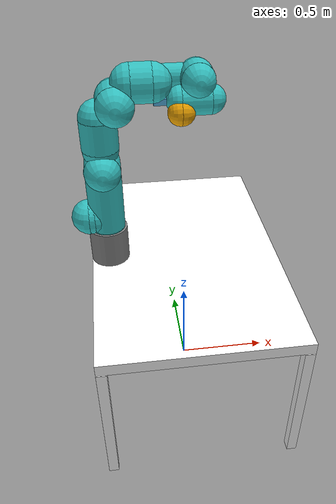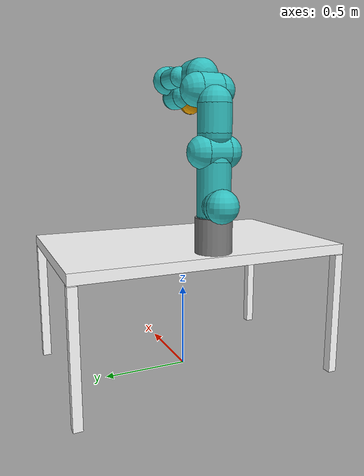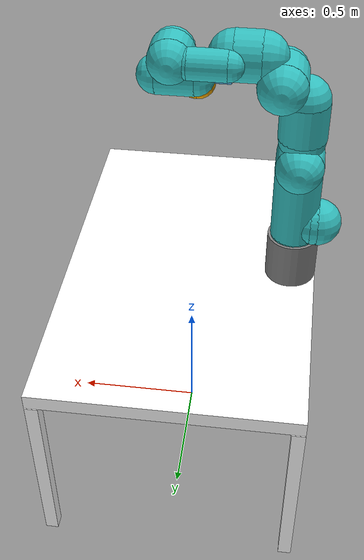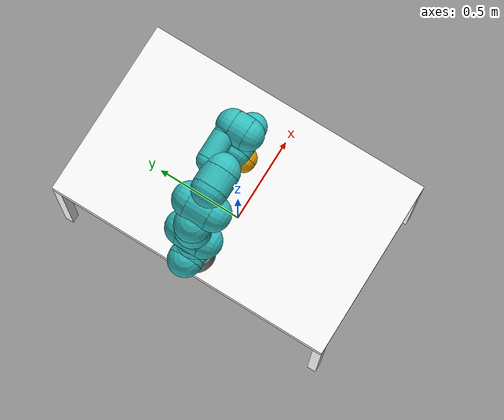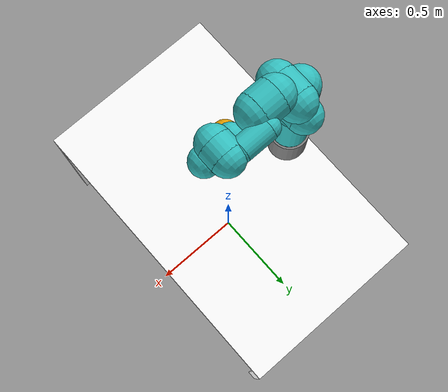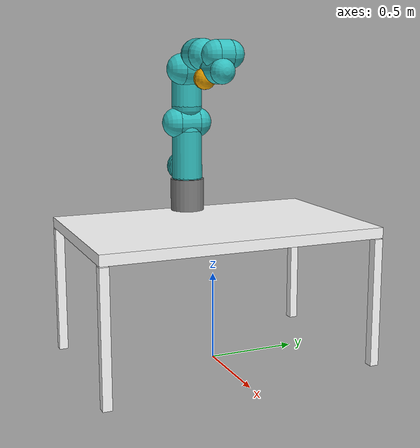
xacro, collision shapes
<?xml version="1.0" ?>
<!-- |    This document was autogenerated by xacro from /home/pas/simulation_ws/src/ur5_dcf_10Mar/ur5_data_collect_fw/urdf/panda_peg.urdf.xacro | -->
<!-- |    EDITING THIS FILE BY HAND IS NOT RECOMMENDED                                 | -->
<robot name="panda_peg">
    <!-- || This file does not contain official inertial properties   || -->
    <!-- || of panda robot. The values are from the identification    || -->
    <!-- || results published in: Identification of the Franka Emika  || -->
    <!-- || PandaRobot With Retrieval of Feasible Parameters Using    || -->
    <!-- || Penalty-Based Optimization                                || -->
    <!-- || by: Claudio Gaz, Marco Cognetti, Alexander Oliva,         || -->
    <!-- || Paolo Robuffo Giordano, Alessandro de Luca                || -->
    <link name="panda_link0">
        <visual>
            <geometry>
                <mesh filename="package://franka_description/meshes/visual/link0.dae" />
            </geometry>
        </visual>
        <collision>
            <origin rpy="0 1.5707963267948966 0" xyz="-0.075 0 0.06" />
            <geometry>
                <cylinder length="0.03" radius="0.09" />
            </geometry>
        </collision>
        <collision>
            <origin rpy="0 0 0" xyz="-0.06 0 0.06" />
            <geometry>
                <sphere radius="0.09" />
            </geometry>
        </collision>
        <collision>
            <origin rpy="0 0 0" xyz="-0.09 0 0.06" />
            <geometry>
                <sphere radius="0.09" />
            </geometry>
        </collision>

<inertial>
            <mass value="0.1" />
            <inertia ixx="0.03" iyy="0.03" izz="0.03" ixy="0.0" ixz="0.0" iyz="0.0" />
        </inertial>

    </link>
    <link name="panda_link1">
        <visual>
            <geometry>
                <mesh filename="package://franka_description/meshes/visual/link1.dae" />
            </geometry>
        </visual>
        <collision>
            <origin rpy="0 0 0" xyz="0 0 -0.1915" />
            <geometry>
                <cylinder length="0.2830" radius="0.09" />
            </geometry>
        </collision>
        <collision>
            <origin rpy="0 0 0" xyz="0 0 -0.333" />
            <geometry>
                <sphere radius="0.09" />
            </geometry>
        </collision>
        <collision>
            <origin rpy="0 0 0" xyz="0 0 -0.05" />
            <geometry>
                <sphere radius="0.09" />
            </geometry>
        </collision>

<inertial>
            <mass value="0.1" />
            <inertia ixx="0.03" iyy="0.03" izz="0.03" ixy="0.0" ixz="0.0" iyz="0.0" />
        </inertial>

    </link>
    <joint name="panda_joint1" type="revolute">
        <safety_controller k_position="100.0" k_velocity="40.0" soft_lower_limit="-2.8973" soft_upper_limit="2.8973" />
        <origin rpy="0 0 0" xyz="0 0 0.333" />
        <parent link="panda_link0" />
        <child link="panda_link1" />
        <axis xyz="0 0 1" />
        <limit effort="87" lower="-2.8973" upper="2.8973" velocity="2.1750" />
    </joint>
    <link name="panda_link2">
        <visual>
            <geometry>
                <mesh filename="package://franka_description/meshes/visual/link2.dae" />
            </geometry>
        </visual>
        <collision>
            <origin rpy="0 0 0" xyz="0 0 0" />
            <geometry>
                <cylinder length="0.12" radius="0.09" />
            </geometry>
        </collision>
        <collision>
            <origin rpy="0 0 0" xyz="0 0 -0.06" />
            <geometry>
                <sphere radius="0.09" />
            </geometry>
        </collision>
        <collision>
            <origin rpy="0 0 0" xyz="0 0 0.06" />
            <geometry>
                <sphere radius="0.09" />
            </geometry>
        </collision>

<inertial>
            <mass value="0.1" />
            <inertia ixx="0.03" iyy="0.03" izz="0.03" ixy="0.0" ixz="0.0" iyz="0.0" />
        </inertial>

    </link>
    <joint name="panda_joint2" type="revolute">
        <safety_controller k_position="100.0" k_velocity="40.0" soft_lower_limit="-1.7628" soft_upper_limit="1.7628" />
        <origin rpy="-1.5707963267948966 0 0" xyz="0 0 0" />
        <parent link="panda_link1" />
        <child link="panda_link2" />
        <axis xyz="0 0 1" />
        <limit effort="87" lower="-1.7628" upper="1.7628" velocity="2.1750" />
    </joint>
    <link name="panda_link3">
        <visual>
            <geometry>
                <mesh filename="package://franka_description/meshes/visual/link3.dae" />
            </geometry>
        </visual>
        <collision>
            <origin rpy="0 0 0" xyz="0 0 -0.145" />
            <geometry>
                <cylinder length="0.15" radius="0.09" />
            </geometry>
        </collision>
        <collision>
            <origin rpy="0 0 0" xyz="0 0 -0.22" />
            <geometry>
                <sphere radius="0.09" />
            </geometry>
        </collision>
        <collision>
            <origin rpy="0 0 0" xyz="0 0 -0.07" />
            <geometry>
                <sphere radius="0.09" />
            </geometry>
        </collision>

<inertial>
            <mass value="0.1" />
            <inertia ixx="0.03" iyy="0.03" izz="0.03" ixy="0.0" ixz="0.0" iyz="0.0" />
        </inertial>

    </link>
    <joint name="panda_joint3" type="revolute">
        <safety_controller k_position="100.0" k_velocity="40.0" soft_lower_limit="-2.8973" soft_upper_limit="2.8973" />
        <origin rpy="1.5707963267948966 0 0" xyz="0 -0.316 0" />
        <parent link="panda_link2" />
        <child link="panda_link3" />
        <axis xyz="0 0 1" />
        <limit effort="87" lower="-2.8973" upper="2.8973" velocity="2.1750" />
    </joint>
    <link name="panda_link4">
        <visual>
            <geometry>
                <mesh filename="package://franka_description/meshes/visual/link4.dae" />
            </geometry>
        </visual>
        <collision>
            <origin rpy="0 0 0" xyz="0 0 0" />
            <geometry>
                <cylinder length="0.12" radius="0.09" />
            </geometry>
        </collision>
        <collision>
            <origin rpy="0 0 0" xyz="0 0 0.06" />
            <geometry>
                <sphere radius="0.09" />
            </geometry>
        </collision>
        <collision>
            <origin rpy="0 0 0" xyz="0 0 -0.06" />
            <geometry>
                <sphere radius="0.09" />
            </geometry>
        </collision>

<inertial>
            <mass value="0.1" />
            <inertia ixx="0.03" iyy="0.03" izz="0.03" ixy="0.0" ixz="0.0" iyz="0.0" />
        </inertial>

    </link>
    <joint name="panda_joint4" type="revolute">
        <safety_controller k_position="100.0" k_velocity="40.0" soft_lower_limit="-3.0718" soft_upper_limit="-0.0698" />
        <origin rpy="1.5707963267948966 0 0" xyz="0.0825 0 0" />
        <parent link="panda_link3" />
        <child link="panda_link4" />
        <axis xyz="0 0 1" />
        <limit effort="87" lower="-3.0718" upper="-0.0698" velocity="2.1750" />
    </joint>
    <link name="panda_link5">
        <visual>
            <geometry>
                <mesh filename="package://franka_description/meshes/visual/link5.dae" />
            </geometry>
        </visual>
        <collision>
            <origin rpy="0 0 0" xyz="0 0 -0.26" />
            <geometry>
                <cylinder length="0.1" radius="0.09" />
            </geometry>
        </collision>
        <collision>
            <origin rpy="0 0 0" xyz="0 0 -0.31" />
            <geometry>
                <sphere radius="0.09" />
            </geometry>
        </collision>
        <collision>
            <origin rpy="0 0 0" xyz="0 0 -0.21" />
            <geometry>
                <sphere radius="0.09" />
            </geometry>
        </collision>
        <collision>
            <origin rpy="0 0 0" xyz="0 0.08 -0.13" />
            <geometry>
                <cylinder length="0.14" radius="0.055" />
            </geometry>
        </collision>
        <collision>
            <origin rpy="0 0 0" xyz="0 0.08 -0.06" />
            <geometry>
                <sphere radius="0.055" />
            </geometry>
        </collision>
        <collision>
            <origin rpy="0 0 0" xyz="0 0.08 -0.20" />
            <geometry>
                <sphere radius="0.055" />
            </geometry>
        </collision>

<inertial>
            <mass value="0.1" />
            <inertia ixx="0.03" iyy="0.03" izz="0.03" ixy="0.0" ixz="0.0" iyz="0.0" />
        </inertial>

    </link>
    <joint name="panda_joint5" type="revolute">
        <safety_controller k_position="100.0" k_velocity="40.0" soft_lower_limit="-2.8973" soft_upper_limit="2.8973" />
        <origin rpy="-1.5707963267948966 0 0" xyz="-0.0825 0.384 0" />
        <parent link="panda_link4" />
        <child link="panda_link5" />
        <axis xyz="0 0 1" />
        <limit effort="12" lower="-2.8973" upper="2.8973" velocity="2.6100" />
    </joint>
    <link name="panda_link6">
        <visual>
            <geometry>
                <mesh filename="package://franka_description/meshes/visual/link6.dae" />
            </geometry>
        </visual>
        <collision>
            <origin rpy="0 0 0" xyz="0 0 -0.03" />
            <geometry>
                <cylinder length="0.08" radius="0.08" />
            </geometry>
        </collision>
        <collision>
            <origin rpy="0 0 0" xyz="0 0 0.01" />
            <geometry>
                <sphere radius="0.08" />
            </geometry>
        </collision>
        <collision>
            <origin rpy="0 0 0" xyz="0 0 -0.07" />
            <geometry>
                <sphere radius="0.08" />
            </geometry>
        </collision>

<inertial>
            <mass value="0.1" />
            <inertia ixx="0.03" iyy="0.03" izz="0.03" ixy="0.0" ixz="0.0" iyz="0.0" />
        </inertial>

    </link>
    <joint name="panda_joint6" type="revolute">
        <safety_controller k_position="100.0" k_velocity="40.0" soft_lower_limit="-0.0175" soft_upper_limit="3.7525" />
        <origin rpy="1.5707963267948966 0 0" xyz="0 0 0" />
        <parent link="panda_link5" />
        <child link="panda_link6" />
        <axis xyz="0 0 1" />
        <limit effort="12" lower="-0.0175" upper="3.7525" velocity="2.6100" />
    </joint>
    <link name="panda_link7">
        <visual>
            <geometry>
                <mesh filename="package://franka_description/meshes/visual/link7.dae" />
            </geometry>
        </visual>
        <collision>
            <origin rpy="0 0 0" xyz="0 0 0.01" />
            <geometry>
                <cylinder length="0.14" radius="0.07" />
            </geometry>
        </collision>
        <collision>
            <origin rpy="0 0 0" xyz="0 0 0.08" />
            <geometry>
                <sphere radius="0.07" />
            </geometry>
        </collision>
        <collision>
            <origin rpy="0 0 0" xyz="0 0 -0.06" />
            <geometry>
                <sphere radius="0.07" />
            </geometry>
        </collision>

<inertial>
            <mass value="0.1" />
            <inertia ixx="0.03" iyy="0.03" izz="0.03" ixy="0.0" ixz="0.0" iyz="0.0" />
        </inertial>

    </link>
    <joint name="panda_joint7" type="revolute">
        <safety_controller k_position="100.0" k_velocity="40.0" soft_lower_limit="-2.8973" soft_upper_limit="2.8973" />
        <origin rpy="1.5707963267948966 0 0" xyz="0.088 0 0" />
        <parent link="panda_link6" />
        <child link="panda_link7" />
        <axis xyz="0 0 1" />
        <limit effort="12" lower="-2.8973" upper="2.8973" velocity="2.6100" />
    </joint>
    <link name="panda_link8">
        <collision>
            <origin rpy="3.141592653589793 1.5707963267948966 1.5707963267948966" xyz="0.0424 0.0424 -0.0250" />
            <geometry>
                <cylinder length="0.01" radius="0.06" />
            </geometry>
        </collision>
        <collision>
            <origin rpy="0 0 0" xyz="0.0424 0.0424 -0.02" />
            <geometry>
                <sphere radius="0.06" />
            </geometry>
        </collision>
        <collision>
            <origin rpy="0 0 0" xyz="0.0424 0.0424 -0.03" />
            <geometry>
                <sphere radius="0.06" />
            </geometry>
        </collision>

<inertial>
            <mass value="0.1" />
            <inertia ixx="0.03" iyy="0.03" izz="0.03" ixy="0.0" ixz="0.0" iyz="0.0" />
        </inertial>

    </link>
    <joint name="panda_joint8" type="fixed">
        <origin rpy="0 0 0" xyz="0 0 0.107" />
        <parent link="panda_link7" />
        <child link="panda_link8" />
    </joint>
    <!-- arm -->
    <link name="peg">
        <visual>
            <geometry>
                <box size="0.03 0.03 0.1" />
            </geometry>
            <origin rpy="0 0 0" xyz="0 0 0.05" />
        </visual>
        <collision>
            <geometry>
                <box size="0.03 0.03 0.1" />
            </geometry>
            <origin rpy="0 0 0" xyz="0 0 0.05" />
        </collision>

<inertial>
            <mass value="0.1" />
            <inertia ixx="0.03" iyy="0.03" izz="0.03" ixy="0.0" ixz="0.0" iyz="0.0" />
        </inertial>

    </link>
    <joint name="peg_joint" type="fixed">
        <parent link="panda_link8" />
        <child link="peg" />
        <origin rpy="0.0 0 0" xyz="0.0 0.0 0.0" />
    </joint>
    <link name="world" />
    <material name="white">
        <color rgba="1 1 1 1" />
    </material>
    <link name="right_front_leg">
        <visual>
            <geometry>
                <box size="0.05 0.05 0.74" />
            </geometry>
            <origin rpy="0 0 0" xyz="0 0 -0.37" />
            <material name="white" />
        </visual>
        <collision>
            <geometry>
                <box size="0.05 0.05 0.73" />
            </geometry>
            <origin rpy="0 0 0" xyz="0 0 -0.37" />
        </collision>

<inertial>
            <mass value="1" />
            <inertia ixx="1.0" ixy="0.0" ixz="0.0" iyy="1.0" iyz="0.0" izz="1.0" />
        </inertial>

    </link>
    <joint name="base_to_right_front_leg" type="fixed">
        <parent link="plate" />
        <child link="right_front_leg" />
        <origin xyz="0.475 -0.775 -0.06" />
    </joint>
    <gazebo reference="right_front_leg">
        <mu1>1.0</mu1>
        <mu2>1.0</mu2>
        <material>Gazebo/Wood</material>
    </gazebo>
    <!-- A bunch of stuff cut -->
    <link name="left_front_leg">
        <visual>
            <geometry>
                <box size="0.05 0.05 0.74" />
            </geometry>
            <origin rpy="0 0 0" xyz="0 0 -0.37" />
            <material name="white" />
        </visual>
        <collision>
            <geometry>
                <box size="0.05 0.05 0.73" />
            </geometry>
            <origin rpy="0 0 0" xyz="0 0 -0.37" />
        </collision>

<inertial>
            <mass value="1" />
            <inertia ixx="1.0" ixy="0.0" ixz="0.0" iyy="1.0" iyz="0.0" izz="1.0" />
        </inertial>

    </link>
    <joint name="base_to_left_front_leg" type="fixed">
        <parent link="plate" />
        <child link="left_front_leg" />
        <origin xyz="0.475 0.775 -0.06" />
    </joint>
    <gazebo reference="left_front_leg">
        <mu1>1.0</mu1>
        <mu2>1.0</mu2>
        <material>Gazebo/Wood</material>
    </gazebo>
    <!-- A bunch of stuff cut -->
    <link name="right_back_leg">
        <visual>
            <geometry>
                <box size="0.05 0.05 0.74" />
            </geometry>
            <origin rpy="0 0 0" xyz="0 0 -0.37" />
            <material name="white" />
        </visual>
        <collision>
            <geometry>
                <box size="0.05 0.05 0.73" />
            </geometry>
            <origin rpy="0 0 0" xyz="0 0 -0.37" />
        </collision>

<inertial>
            <mass value="1" />
            <inertia ixx="1.0" ixy="0.0" ixz="0.0" iyy="1.0" iyz="0.0" izz="1.0" />
        </inertial>

    </link>
    <joint name="base_to_right_back_leg" type="fixed">
        <parent link="plate" />
        <child link="right_back_leg" />
        <origin xyz="-0.475 -0.775 -0.06" />
    </joint>
    <gazebo reference="right_back_leg">
        <mu1>1.0</mu1>
        <mu2>1.0</mu2>
        <material>Gazebo/Wood</material>
    </gazebo>
    <!-- A bunch of stuff cut -->
    <link name="left_back_leg">
        <visual>
            <geometry>
                <box size="0.05 0.05 0.74" />
            </geometry>
            <origin rpy="0 0 0" xyz="0 0 -0.37" />
            <material name="white" />
        </visual>
        <collision>
            <geometry>
                <box size="0.05 0.05 0.73" />
            </geometry>
            <origin rpy="0 0 0" xyz="0 0 -0.37" />
        </collision>

<inertial>
            <mass value="1" />
            <inertia ixx="1.0" ixy="0.0" ixz="0.0" iyy="1.0" iyz="0.0" izz="1.0" />
        </inertial>

    </link>
    <joint name="base_to_left_back_leg" type="fixed">
        <parent link="plate" />
        <child link="left_back_leg" />
        <origin xyz="-0.475 0.775 -0.06" />
    </joint>
    <gazebo reference="left_back_leg">
        <mu1>1.0</mu1>
        <mu2>1.0</mu2>
        <material>Gazebo/Wood</material>
    </gazebo>
    <!-- A bunch of stuff cut -->
    <link name="plate">
        <visual>
            <origin rpy="0.0 0.0 0.0" xyz="0.0 0.0 -0.03" />
            <geometry>
                <box size="1.0 1.6 0.06" />
            </geometry>
            <material name="white" />
        </visual>
        <collision>
            <origin rpy="0.0 0.0 0.0" xyz="0.0 0.0 -0.03" />
            <geometry>
                <box size="1.0 1.6 0.06" />
            </geometry>
        </collision>

<inertial>
            <mass value="5" />
            <inertia ixx="1.0" ixy="0.0" ixz="0.0" iyy="1.0" iyz="0.0" izz="1.0" />
        </inertial>

    </link>
    <gazebo reference="plate">
        <mu1>0.2</mu1>
        <mu2>0.2</mu2>
        <material>Gazebo/Yellow</material>
    </gazebo>
    <joint name="world_joint" type="fixed">
        <parent link="world" />
        <child link="plate" />
        <origin rpy="0.0 0.0 0.0" xyz="0.0 0.0 0.8" />
    </joint>
    <joint name="pedestal_joint" type="fixed">
        <parent link="plate" />
        <child link="pedestal" />
        <origin rpy="0.0 0.0 0.0" xyz="-0.4 0.0 0.0" />
    </joint>
    <link name="pedestal">

<inertial>
            <mass value="10" />
            <inertia ixx="1.0" ixy="0.0" ixz="0.0" iyy="1.0" iyz="0.0" izz="1.0" />
        </inertial>

        <visual>
            <origin rpy="0 0 0" xyz="0 0 0.1" />
            <geometry>
                <cylinder length="0.2" radius="0.1" />
            </geometry>
            <material name="Gray">
                <color rgba="0.5 0.5 0.5 1" />
            </material>
        </visual>
        <collision>
            <origin rpy="0 0 0" xyz="0 0 0.1" />
            <geometry>
                <cylinder length="0.19" radius="0.1" />
            </geometry>
        </collision>
    </link>
    <gazebo reference="pedestal">
        <mu1>0.2</mu1>
        <mu2>0.2</mu2>
        <material>Gazebo/Orange</material>
    </gazebo>
    <joint name="base_joint" type="fixed">
        <parent link="pedestal" />
        <child link="panda_link0" />
        <origin rpy="0.0 0.0 0.0" xyz="0.0 0.0 0.2" />
    </joint>
    <gazebo reference="panda_link0">
        <mu1>0.2</mu1>
        <mu2>0.2</mu2>
        <material>Gazebo/Turquoise</material>
    </gazebo>
    <gazebo reference="panda_link1">
        <mu1>0.2</mu1>
        <mu2>0.2</mu2>
        <material>Gazebo/Turquoise</material>
    </gazebo>
    <gazebo reference="panda_link2">
        <mu1>0.2</mu1>
        <mu2>0.2</mu2>
        <material>Gazebo/Turquoise</material>
    </gazebo>
    <gazebo reference="panda_link3">
        <mu1>0.2</mu1>
        <mu2>0.2</mu2>
        <material>Gazebo/Turquoise</material>
    </gazebo>
    <gazebo reference="panda_link4">
        <mu1>0.2</mu1>
        <mu2>0.2</mu2>
        <material>Gazebo/Turquoise</material>
    </gazebo>
    <gazebo reference="panda_link5">
        <mu1>0.2</mu1>
        <mu2>0.2</mu2>
        <material>Gazebo/Turquoise</material>
    </gazebo>
    <gazebo reference="panda_link6">
        <mu1>0.2</mu1>
        <mu2>0.2</mu2>
        <material>Gazebo/Turquoise</material>
    </gazebo>
    <gazebo reference="panda_link7">
        <mu1>0.2</mu1>
        <mu2>0.2</mu2>
        <material>Gazebo/Turquoise</material>
    </gazebo>
    <gazebo reference="peg">
        <sensor name="peg_contact_sensor" type="contact">
            <always_on>true</always_on>
            <update_rate>100</update_rate>
            <contact>
                <collision>panda_link7_fixed_joint_lump__peg_collision_6</collision>
            </contact>
            <plugin filename="libgazebo_ros_bumper.so" name="contact_sensor_plugin">
                <bumperTopicName>asl/contact_sensor</bumperTopicName>
                <frameName>peg</frameName>
            </plugin>
        </sensor>
    </gazebo>

<transmission name="trans_panda_joint1">
        <type>transmission_interface/SimpleTransmission</type>
        <joint name="panda_joint1">
            <hardwareInterface>hardware_interface/PositionJointInterface</hardwareInterface>
        </joint>
        <actuator name="panda_joint1_motor">
            <hardwareInterface>hardware_interface/PositionJointInterface</hardwareInterface>
            <mechanicalReduction>1</mechanicalReduction>
        </actuator>
    </transmission>
    <transmission name="trans_panda_joint2">
        <type>transmission_interface/SimpleTransmission</type>
        <joint name="panda_joint2">
            <hardwareInterface>hardware_interface/PositionJointInterface</hardwareInterface>
        </joint>
        <actuator name="panda_joint2_motor">
            <hardwareInterface>hardware_interface/PositionJointInterface</hardwareInterface>
            <mechanicalReduction>1</mechanicalReduction>
        </actuator>
    </transmission>
    <transmission name="trans_panda_joint3">
        <type>transmission_interface/SimpleTransmission</type>
        <joint name="panda_joint3">
            <hardwareInterface>hardware_interface/PositionJointInterface</hardwareInterface>
        </joint>
        <actuator name="panda_joint3_motor">
            <hardwareInterface>hardware_interface/PositionJointInterface</hardwareInterface>
            <mechanicalReduction>1</mechanicalReduction>
        </actuator>
    </transmission>
    <transmission name="trans_panda_joint4">
        <type>transmission_interface/SimpleTransmission</type>
        <joint name="panda_joint4">
            <hardwareInterface>hardware_interface/PositionJointInterface</hardwareInterface>
        </joint>
        <actuator name="panda_joint4_motor">
            <hardwareInterface>hardware_interface/PositionJointInterface</hardwareInterface>
            <mechanicalReduction>1</mechanicalReduction>
        </actuator>
    </transmission>
    <transmission name="trans_panda_joint5">
        <type>transmission_interface/SimpleTransmission</type>
        <joint name="panda_joint5">
            <hardwareInterface>hardware_interface/PositionJointInterface</hardwareInterface>
        </joint>
        <actuator name="panda_joint5_motor">
            <hardwareInterface>hardware_interface/PositionJointInterface</hardwareInterface>
            <mechanicalReduction>1</mechanicalReduction>
        </actuator>
    </transmission>
    <transmission name="trans_panda_joint6">
        <type>transmission_interface/SimpleTransmission</type>
        <joint name="panda_joint6">
            <hardwareInterface>hardware_interface/PositionJointInterface</hardwareInterface>
        </joint>
        <actuator name="panda_joint6_motor">
            <hardwareInterface>hardware_interface/PositionJointInterface</hardwareInterface>
            <mechanicalReduction>1</mechanicalReduction>
        </actuator>
    </transmission>
    <transmission name="trans_panda_joint7">
        <type>transmission_interface/SimpleTransmission</type>
        <joint name="panda_joint7">
            <hardwareInterface>hardware_interface/PositionJointInterface</hardwareInterface>
        </joint>
        <actuator name="panda_joint7_motor">
            <hardwareInterface>hardware_interface/PositionJointInterface</hardwareInterface>
            <mechanicalReduction>1</mechanicalReduction>
        </actuator>
    </transmission>
    <gazebo>
        <plugin name="gazebo_ros_control" filename="libgazebo_ros_control.so">
            <robotNamespace>/</robotNamespace>
        </plugin>
    </gazebo>
</robot>
